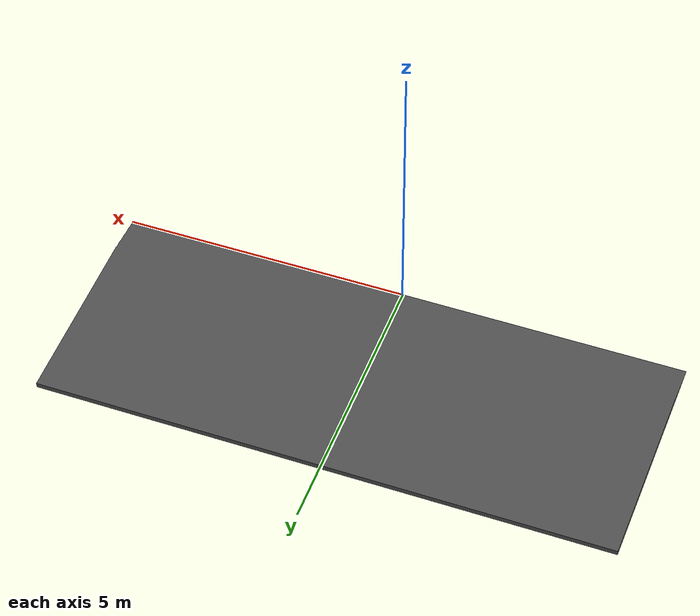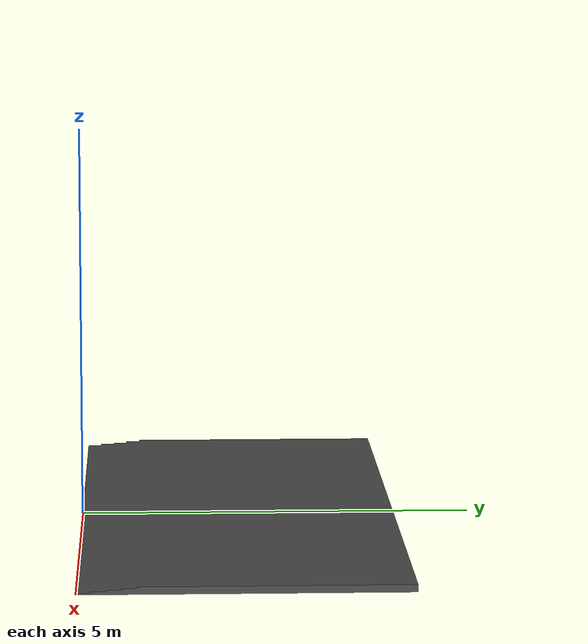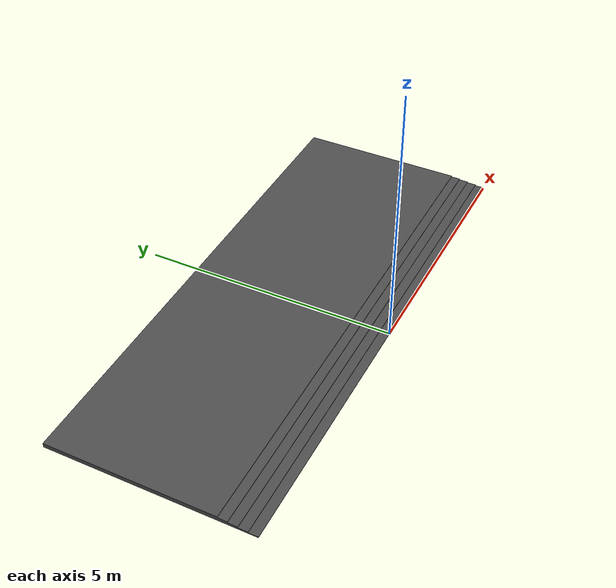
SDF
<?xml version='1.0'?>
<sdf version="1.5">
  <model name="stairs_standard"> <!-- Very important to change-->
    <static>true</static>
    <pose>0 0 0 0 0 0</pose> <!-- Translation: X Y Z and Rotation: Roll Pitch Yaw (In Radian)-->
    <link name="body">

    <inertial> >
    <mass>0</mass>
      <inertia>
        <ixx>0</ixx>
        <ixy>0</ixy>
        <ixz>0</ixz>
        <iyy>0</iyy>
        <iyz>0</iyz>
        <izz>0</izz>
      </inertia>
    </inertial>

       <collision name="collision"> <!-- You can use mesh like below -->
        <geometry>
          <mesh><!-- Very important to change-->
             <uri>/home/sorox23/robotic_ws/master_thesis_ws/src/property_based_tester/environment/models/stairs_standard/meshes/stairs_standard.stl</uri>
             <scale>0.01 0.01 0.001</scale>
          </mesh>
        </geometry>
        <surface>
          <friction>
            <ode>
              <mu>0.75</mu>
              <mu2>0.75</mu2>
            </ode>
          </friction>
        </surface>
      </collision>

      <visual name="visual">
        <geometry>
          <mesh><!-- Very important to change-->
             <uri>/home/sorox23/robotic_ws/master_thesis_ws/src/property_based_tester/environment/models/stairs_standard/meshes/stairs_standard.stl</uri>
             <scale>0.01 0.01 0.001</scale>
          </mesh>
        </geometry>

        <material>
          <script> <!-- Very important to change-->
             <uri>/home/sorox23/robotic_ws/master_thesis_ws/src/property_based_tester/environment/models/stairs_standard/materials/scripts</uri>
             <uri>/home/sorox23/robotic_ws/master_thesis_ws/src/property_based_tester/environment/models/stairs_standard/materials/textures</uri>
             <name>Gazebo/DarkGrey</name>
          </script>
        </material>
      </visual>

    </link>
  </model>
</sdf>
